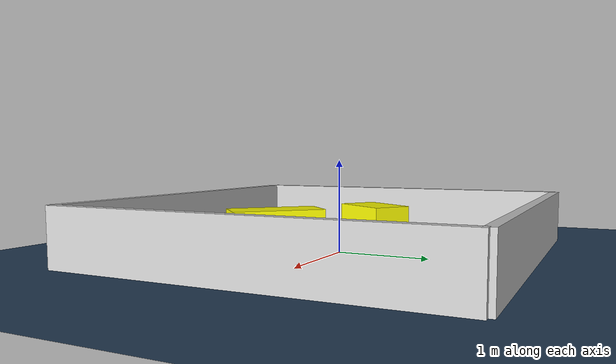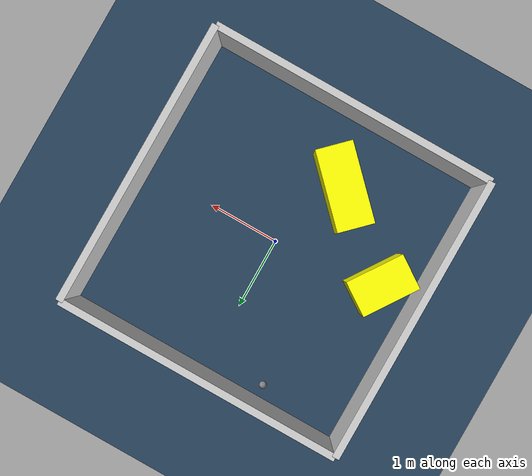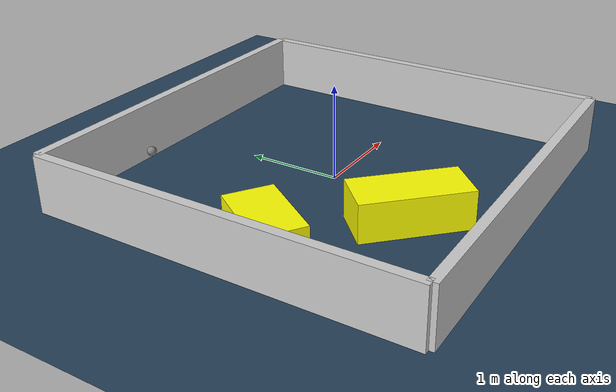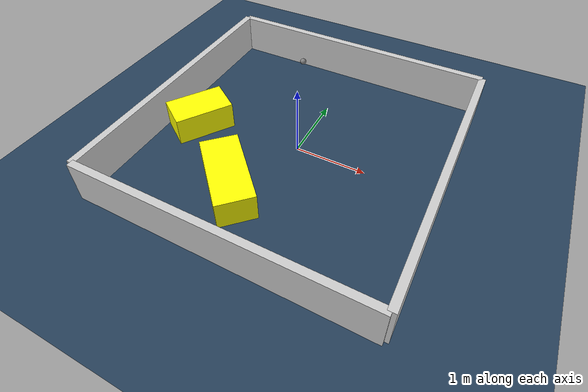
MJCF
<?xml version="1.0" ?>
<mujoco model="generated_environment">
  <option timestep="0.01" integrator="RK4" cone="elliptic"/>
  <default>
    <geom density="1"/>
  </default>
  <asset>
    <texture builtin="gradient" height="3072" rgb1="0.3 0.5 0.7" rgb2="0 0 0" type="skybox" width="512"/>
    <texture builtin="checker" height="300" mark="edge" markrgb="0.8 0.8 0.8" name="groundplane" rgb1="0.2 0.3 0.4" rgb2="0.1 0.2 0.3" type="2d" width="300"/>
    <material name="groundplane" reflectance="0.2" texrepeat="5 5" texture="groundplane" texuniform="true"/>
    <material name="robot" rgba="0.0 1.0 0.0 1"/>
  </asset>
  <worldbody>
    <light dir="0 0 -1" directional="true" pos="0 0 1.5"/>
    <geom condim="4" friction="1.0 0.005 0.001" material="groundplane" name="floor" size="0 0 0.05" type="plane"/>
    <body name="walls">
      <geom name="wall_1" condim="4" pos="-2.0 0.0 0.3" rgba="0.800000011920929 0.800000011920929 0.800000011920929 1.0" size="0.05 2.0 0.3" type="box"/>
      <geom name="wall_2" condim="4" pos="2.0 0.0 0.3" rgba="0.800000011920929 0.800000011920929 0.800000011920929 1.0" size="0.05 2.0 0.3" type="box"/>
      <geom name="wall_3" condim="4" pos="0.0 -2.0 0.3" rgba="0.800000011920929 0.800000011920929 0.800000011920929 1.0" size="2.0 0.05 0.3" type="box"/>
      <geom name="wall_4" condim="4" pos="0.0 2.0 0.3" rgba="0.800000011920929 0.800000011920929 0.800000011920929 1.0" size="2.0 0.05 0.3" type="box"/>
    </body>
    <body name="robot">
      <joint name="joint_x" type="slide" pos="0 0 0" axis="1 0 0"/>
      <joint name="joint_y" type="slide" pos="0 0 0" axis="0 1 0"/>
      <geom name="robot" type="sphere" pos="-0.7928225384468356 1.7373925297387958 0.2" size="0.05" mass="5." friction="1.0 0.005 0.0001" condim="4"/>
      <site name="sensor_ball"/>
    </body>
    <body name="obstacle_1_movable">
      <geom name="obstacle_1_movable" condim="4" pos="-0.4312299522390124 -1.061656089620799 0.2" euler="0 0 224.56335280291987" friction="1.0 0.005 0.001" rgba="1 1 0 1" size="0.2549058277979687 0.5597727460603754 0.2" type="box" mass="0.1"/>
      <joint type="free"/>
    </body>
    <body name="obstacle_2_movable">
      <geom name="obstacle_2_movable" condim="4" pos="-1.4920812959890501 -0.19002499862519118 0.2" euler="0 0 56.045937598192744" friction="1.0 0.005 0.001" rgba="1 1 0 1" size="0.41042516269008056 0.2519299363586889 0.2" type="box" mass="0.1"/>
      <joint type="free"/>
    </body>
  </worldbody>
  <actuator>
    <motor name="actuator_x" joint="joint_x" gear="1" ctrlrange="-1 1"/>
    <motor name="actuator_y" joint="joint_y" gear="1" ctrlrange="-1 1"/>
  </actuator>
</mujoco>
